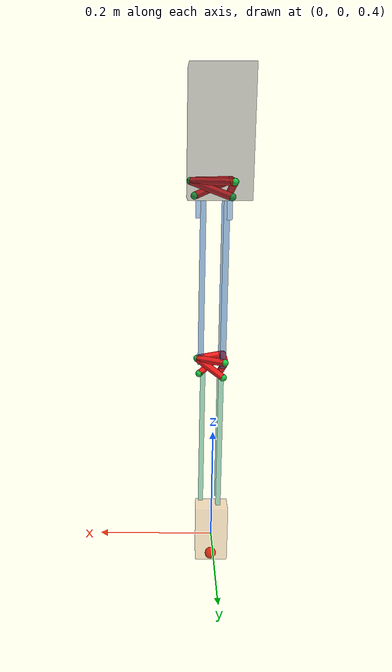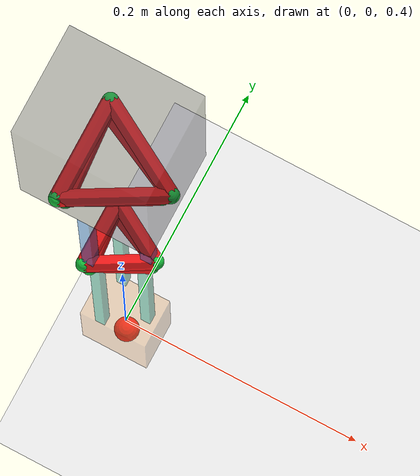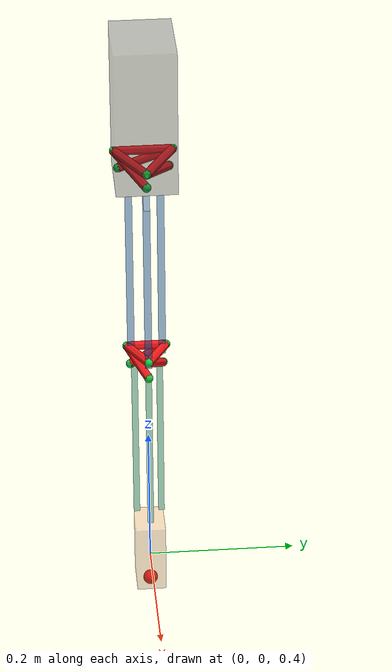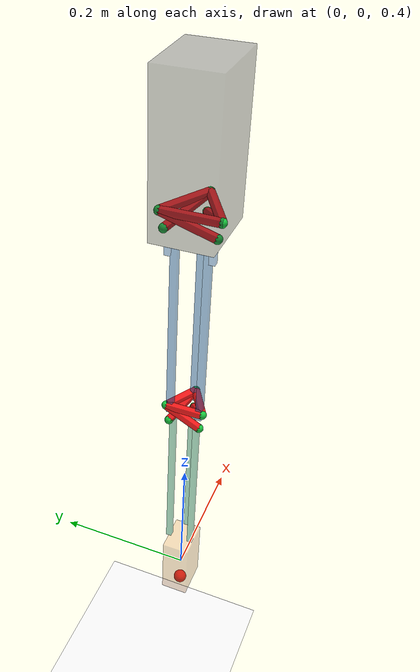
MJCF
<mujoco model="arm_minicell_tensegrity">
  <compiler angle="degree" autolimits="true"/>
  <option timestep="0.002" integrator="RK4" gravity="0 0 -9.81"/>

  <default>
    <joint damping="0.6" armature="0.01"/>
    <geom density="850" friction="0.8 0.05 0.02"/>
    <site size="0.006" rgba="0.1 0.8 0.25 1"/>
    <motor ctrllimited="true" ctrlrange="-1 1"/>
    <tendon width="0.006" rgba="0.95 0.1 0.1 1"/>
  </default>

  <worldbody>
    <geom name="floor" type="plane" size="2 2 0.1" rgba="0.96 0.96 0.96 1"/>

    <body name="torso" pos="0 0 1.0">
      <geom name="torso_geom" type="box" size="0.05 0.04 0.10" pos="0 0 0.10" rgba="0.2 0.2 0.25 0.35"/>

      <!-- Shoulder cell: torso-side nodes -->
      <site name="sh_t1" pos="0.045 0.000 0.028"/>
      <site name="sh_t2" pos="-0.022 0.038 0.028"/>
      <site name="sh_t3" pos="-0.022 -0.038 0.028"/>

      <!-- Shoulder-side visible struts -->
      <geom type="box" size="0.004 0.004 0.03" pos="0.032 0.000 0.000" rgba="0.15 0.45 0.85 0.45"/>
      <geom type="box" size="0.004 0.004 0.03" pos="-0.016 0.028 0.000" rgba="0.15 0.45 0.85 0.45"/>
      <geom type="box" size="0.004 0.004 0.03" pos="-0.016 -0.028 0.000" rgba="0.15 0.45 0.85 0.45"/>

      <body name="shoulder_pitch_frame" pos="0 0 0.02">
        <inertial pos="0 0 0" mass="0.01" diaginertia="1e-5 1e-5 1e-5"/>
        <joint name="shoulder_pitch" type="hinge" axis="0 1 0" range="-80 110"/>

        <body name="upper_arm" pos="0 0 0">
          <!-- Shoulder cell: upper-arm-side nodes -->
          <site name="sh_u1" pos="0.038 0.000 -0.015"/>
          <site name="sh_u2" pos="-0.019 0.033 -0.015"/>
          <site name="sh_u3" pos="-0.019 -0.033 -0.015"/>

          <!-- Minimal rigid coupler link: 3 long struts (upper arm) -->
          <geom type="box" size="0.0045 0.0045 0.14" pos="0.024 0.000 -0.155" rgba="0.12 0.44 0.82 0.5"/>
          <geom type="box" size="0.0045 0.0045 0.14" pos="-0.012 0.021 -0.155" rgba="0.12 0.44 0.82 0.5"/>
          <geom type="box" size="0.0045 0.0045 0.14" pos="-0.012 -0.021 -0.155" rgba="0.12 0.44 0.82 0.5"/>

          <!-- Elbow cell: upper-arm-side nodes -->
          <site name="el_u1" pos="0.030 0.000 -0.285"/>
          <site name="el_u2" pos="-0.015 0.026 -0.285"/>
          <site name="el_u3" pos="-0.015 -0.026 -0.285"/>

          <body name="elbow_flex_frame" pos="0 0 -0.30">
            <inertial pos="0 0 0" mass="0.01" diaginertia="1e-5 1e-5 1e-5"/>
            <joint name="elbow_flex" type="hinge" axis="0 1 0" range="0 145"/>

            <body name="forearm" pos="0 0 0">
              <!-- Elbow cell: forearm-side nodes -->
              <site name="el_f1" pos="0.026 0.000 -0.012"/>
              <site name="el_f2" pos="-0.013 0.022 -0.012"/>
              <site name="el_f3" pos="-0.013 -0.022 -0.012"/>

              <!-- Minimal rigid coupler link: 3 long struts (forearm) -->
              <geom type="box" size="0.004 0.004 0.12" pos="0.020 0.000 -0.130" rgba="0.18 0.68 0.50 0.5"/>
              <geom type="box" size="0.004 0.004 0.12" pos="-0.010 0.017 -0.130" rgba="0.18 0.68 0.50 0.5"/>
              <geom type="box" size="0.004 0.004 0.12" pos="-0.010 -0.017 -0.130" rgba="0.18 0.68 0.50 0.5"/>

              <body name="hand" pos="0 0 -0.26">
                <geom type="box" size="0.028 0.020 0.05" pos="0 0 -0.05" rgba="0.9 0.62 0.35 0.35"/>
                <site name="ee" pos="0 0 -0.10" size="0.01" rgba="1 0 0 1"/>
              </body>
            </body>
          </body>
        </body>
      </body>
    </body>
  </worldbody>

  <tendon>
    <!-- Shoulder mini-cell passive network: top ring + cross -->
    <spatial name="sh_r12" stiffness="420" damping="8" springlength="0.072"><site site="sh_t1"/><site site="sh_t2"/></spatial>
    <spatial name="sh_r23" stiffness="420" damping="8" springlength="0.072"><site site="sh_t2"/><site site="sh_t3"/></spatial>
    <spatial name="sh_r31" stiffness="420" damping="8" springlength="0.072"><site site="sh_t3"/><site site="sh_t1"/></spatial>

    <spatial name="sh_c1" stiffness="520" damping="8" springlength="0.090"><site site="sh_t1"/><site site="sh_u2"/></spatial>
    <spatial name="sh_c2" stiffness="520" damping="8" springlength="0.090"><site site="sh_t2"/><site site="sh_u3"/></spatial>
    <spatial name="sh_c3" stiffness="520" damping="8" springlength="0.090"><site site="sh_t3"/><site site="sh_u1"/></spatial>

    <!-- Elbow mini-cell passive network -->
    <spatial name="el_r12" stiffness="360" damping="7" springlength="0.052"><site site="el_u1"/><site site="el_u2"/></spatial>
    <spatial name="el_r23" stiffness="360" damping="7" springlength="0.052"><site site="el_u2"/><site site="el_u3"/></spatial>
    <spatial name="el_r31" stiffness="360" damping="7" springlength="0.052"><site site="el_u3"/><site site="el_u1"/></spatial>

    <spatial name="el_c1" stiffness="480" damping="7" springlength="0.070"><site site="el_u1"/><site site="el_f2"/></spatial>
    <spatial name="el_c2" stiffness="480" damping="7" springlength="0.070"><site site="el_u2"/><site site="el_f3"/></spatial>
    <spatial name="el_c3" stiffness="480" damping="7" springlength="0.070"><site site="el_u3"/><site site="el_f1"/></spatial>

    <!-- Actuated antagonistic tendon pairs (proximal motors + cable transmission abstraction) -->
    <fixed name="t_shoulder_flex"><joint joint="shoulder_pitch" coef="1"/></fixed>
    <fixed name="t_shoulder_ext"><joint joint="shoulder_pitch" coef="-1"/></fixed>

    <fixed name="t_elbow_flex"><joint joint="elbow_flex" coef="1"/></fixed>
    <fixed name="t_elbow_ext"><joint joint="elbow_flex" coef="-1"/></fixed>
  </tendon>

  <actuator>
    <motor name="a_sh_flex" tendon="t_shoulder_flex" gear="34"/>
    <motor name="a_sh_ext" tendon="t_shoulder_ext" gear="34"/>
    <motor name="a_el_flex" tendon="t_elbow_flex" gear="30"/>
    <motor name="a_el_ext" tendon="t_elbow_ext" gear="30"/>
  </actuator>

  <sensor>
    <framepos name="s_ee_pos" objtype="site" objname="ee"/>
  </sensor>

  <keyframe>
    <key name="home" qpos="0 20" ctrl="0 0 0 0"/>
  </keyframe>
</mujoco>
